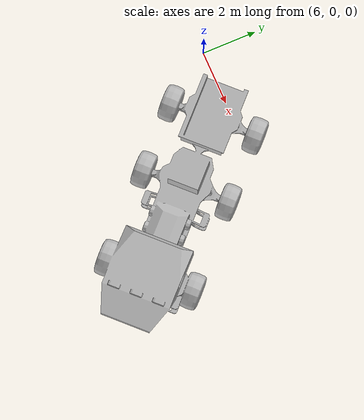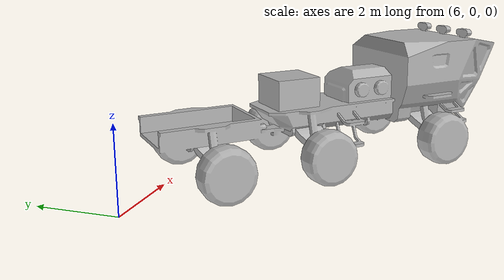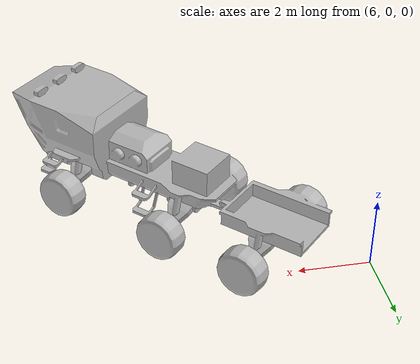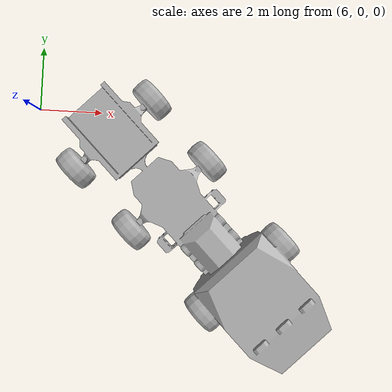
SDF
<sdf version="1.6">
 <world name="SRC_finals">
  <include>
   <pose>11.55513232507203
        -3.7765898151190327
        0
        0
        0
        0.785398163397448</pose>
   <uri>model://mars_explorer</uri>
  </include>
 </world>
</sdf>
